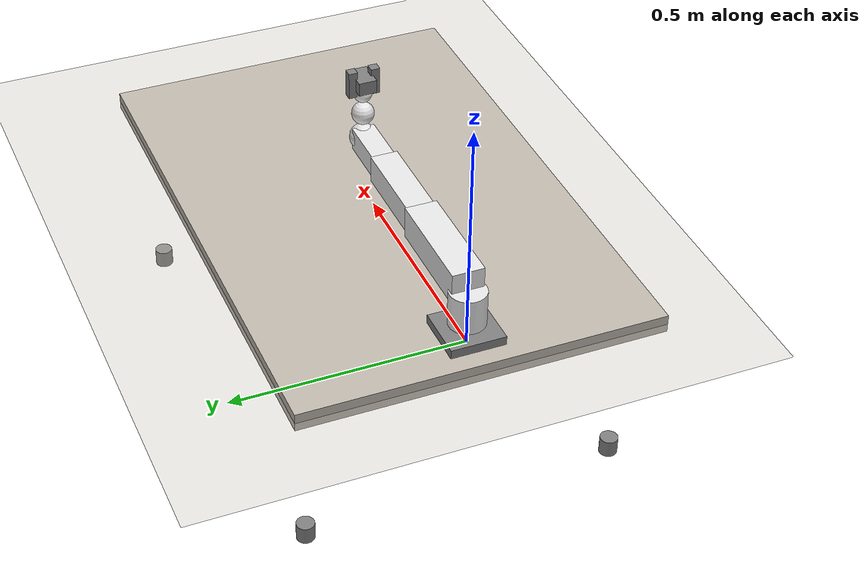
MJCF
<mujoco model="piper">
  <compiler angle="radian" meshdir="meshes" autolimits="true"/>

  <option timestep="0.002" gravity="0 0 -9.81"/>

  <default>
    <default class="piper">
      <joint damping="0.1" frictionloss="0.01" armature="0.01"/>
      <position kp="100" kv="10" forcerange="-50 50"/>
      <default class="visual">
        <geom type="mesh" contype="0" conaffinity="0" group="2"/>
      </default>
      <default class="collision">
        <geom type="mesh" group="3"/>
      </default>
    </default>
  </default>

  <asset>
    <texture name="table" type="2d" file="table.png" width="512" height="512"/>
    <material name="table" texture="table" specular="0.1" shininess="0.1"/>
    <material name="metal" rgba="0.5 0.5 0.5 1" specular="0.5" shininess="0.5"/>
    <material name="white" rgba="0.9 0.9 0.9 1"/>
    <material name="red" rgba="0.9 0.2 0.2 1"/>
    <material name="blue" rgba="0.2 0.2 0.9 1"/>
    <material name="green" rgba="0.2 0.9 0.2 1"/>
    <material name="ball_red" rgba="0.9 0.1 0.1 1" specular="0.3" shininess="0.8"/>
    <material name="ball_blue" rgba="0.1 0.1 0.9 1" specular="0.3" shininess="0.8"/>
    <material name="ball_green" rgba="0.1 0.9 0.1 1" specular="0.3" shininess="0.8"/>
  </asset>

  <worldbody>
    <light name="light1" pos="0 0 2" dir="0 0 -1"/>
    <light name="light2" pos="1 1 1.5" dir="-1 -1 -1.5"/>

    <geom name="floor" pos="0 0 0" size="2 2 0.1" type="plane" material="table" condim="3"/>

    <body name="table" pos="0.5 0 0">
      <geom name="table_top" pos="0 0 0" size="0.6 0.4 0.02" type="box" material="table" condim="3"/>
      <geom name="table_leg1" pos="-0.5 -0.35 -0.4" size="0.02 0.02 0.4" type="cylinder" material="metal"/>
      <geom name="table_leg2" pos="0.5 -0.35 -0.4" size="0.02 0.02 0.4" type="cylinder" material="metal"/>
      <geom name="table_leg3" pos="-0.5 0.35 -0.4" size="0.02 0.02 0.4" type="cylinder" material="metal"/>
      <geom name="table_leg4" pos="0.5 0.35 -0.4" size="0.02 0.02 0.4" type="cylinder" material="metal"/>
    </body>

    <body name="piper_base" pos="0 0 0">
      <geom name="base" pos="0 0 0.02" size="0.06 0.06 0.02" type="box" material="metal" condim="3"/>

      <body name="link1" pos="0 0 0.04">
        <joint name="joint1" pos="0 0 0" axis="0 0 1" range="-3.14 3.14" class="piper"/>
        <geom name="link1_visual" pos="0 0 0.05" size="0.04 0.04 0.05" type="cylinder" material="white" class="visual"/>
        <geom name="link1_collision" pos="0 0 0.05" size="0.04 0.04 0.05" type="cylinder" class="collision"/>

        <body name="link2" pos="0 0 0.1">
          <joint name="joint2" pos="0 0 0" axis="0 1 0" range="-1.57 1.57" class="piper"/>
          <geom name="link2_visual" pos="0.12 0 0" size="0.12 0.035 0.035" type="box" material="white" class="visual"/>
          <geom name="link2_collision" pos="0.12 0 0" size="0.12 0.035 0.035" type="box" class="collision"/>

          <body name="link3" pos="0.24 0 0">
            <joint name="joint3" pos="0 0 0" axis="0 1 0" range="-1.57 1.57" class="piper"/>
            <geom name="link3_visual" pos="0.1 0 0" size="0.1 0.03 0.03" type="box" material="white" class="visual"/>
            <geom name="link3_collision" pos="0.1 0 0" size="0.1 0.03 0.03" type="box" class="collision"/>

            <body name="link4" pos="0.2 0 0">
              <joint name="joint4" pos="0 0 0" axis="0 1 0" range="-1.57 1.57" class="piper"/>
              <geom name="link4_visual" pos="0.06 0 0" size="0.06 0.025 0.025" type="box" material="white" class="visual"/>
              <geom name="link4_collision" pos="0.06 0 0" size="0.06 0.025 0.025" type="box" class="collision"/>

              <body name="link5" pos="0.12 0 0">
                <joint name="joint5" pos="0 0 0" axis="0 0 1" range="-3.14 3.14" class="piper"/>
                <geom name="link5_visual" pos="0 0 0" size="0.03 0.03 0.03" type="sphere" material="white" class="visual"/>
                <geom name="link5_collision" pos="0 0 0" size="0.03 0.03 0.03" type="sphere" class="collision"/>

                <body name="link6" pos="0 0 0.06">
                  <joint name="joint6" pos="0 0 0" axis="0 1 0" range="-1.57 1.57" class="piper"/>
                  <geom name="link6_visual" pos="0 0 0" size="0.025 0.025 0.025" type="sphere" material="white" class="visual"/>
                  <geom name="link6_collision" pos="0 0 0" size="0.025 0.025 0.025" type="sphere" class="collision"/>

                  <body name="link7" pos="0 0 0.05">
                    <joint name="joint7" pos="0 0 0" axis="0 0 1" range="-3.14 3.14" class="piper"/>
                    <geom name="link7_visual" pos="0 0 0" size="0.02 0.02 0.02" type="sphere" material="white" class="visual"/>
                    <geom name="link7_collision" pos="0 0 0" size="0.02 0.02 0.02" type="sphere" class="collision"/>

                    <body name="gripper_base" pos="0 0 0.03">
                      <geom name="gripper_base_visual" pos="0 0 0" size="0.03 0.02 0.015" type="box" material="metal" class="visual"/>
                      <geom name="gripper_base_collision" pos="0 0 0" size="0.03 0.02 0.015" type="box" class="collision"/>

                      <body name="gripper_left" pos="0 0.015 0">
                        <joint name="gripper_left" pos="0 0 0" axis="0 1 0" range="0 0.04" class="piper"/>
                        <geom name="gripper_left_visual" pos="0 0.01 0" size="0.01 0.01 0.03" type="box" material="metal" class="visual"/>
                        <geom name="gripper_left_collision" pos="0 0.01 0" size="0.01 0.01 0.03" type="box" condim="3" friction="1 0.5 0.01" class="collision"/>
                      </body>

                      <body name="gripper_right" pos="0 -0.015 0">
                        <joint name="gripper_right" pos="0 0 0" axis="0 -1 0" range="0 0.04" class="piper"/>
                        <geom name="gripper_right_visual" pos="0 -0.01 0" size="0.01 0.01 0.03" type="box" material="metal" class="visual"/>
                        <geom name="gripper_right_collision" pos="0 -0.01 0" size="0.01 0.01 0.03" type="box" condim="3" friction="1 0.5 0.01" class="collision"/>
                      </body>
                    </body>
                  </body>
                </body>
              </body>
            </body>
          </body>
        </body>
      </body>
    </body>

    <camera name="camera" pos="0.8 0 0.8" quat="0.653 0.271 0.271 0.653" fovy="60"/>
    <camera name="top_view" pos="0 0 1.5" quat="1 0 0 0" fovy="60"/>
  </worldbody>

  <actuator>
    <position name="joint1_act" joint="joint1" kp="100" kv="10" forcerange="-50 50"/>
    <position name="joint2_act" joint="joint2" kp="100" kv="10" forcerange="-50 50"/>
    <position name="joint3_act" joint="joint3" kp="100" kv="10" forcerange="-50 50"/>
    <position name="joint4_act" joint="joint4" kp="100" kv="10" forcerange="-50 50"/>
    <position name="joint5_act" joint="joint5" kp="100" kv="10" forcerange="-50 50"/>
    <position name="joint6_act" joint="joint6" kp="100" kv="10" forcerange="-50 50"/>
    <position name="joint7_act" joint="joint7" kp="100" kv="10" forcerange="-50 50"/>
    <position name="gripper_left_act" joint="gripper_left" kp="50" kv="5" forcerange="-20 20"/>
    <position name="gripper_right_act" joint="gripper_right" kp="50" kv="5" forcerange="-20 20"/>
  </actuator>

  <sensor>
    <jointpos name="joint1_pos" joint="joint1"/>
    <jointpos name="joint2_pos" joint="joint2"/>
    <jointpos name="joint3_pos" joint="joint3"/>
    <jointpos name="joint4_pos" joint="joint4"/>
    <jointpos name="joint5_pos" joint="joint5"/>
    <jointpos name="joint6_pos" joint="joint6"/>
    <jointpos name="joint7_pos" joint="joint7"/>
    <jointvel name="joint1_vel" joint="joint1"/>
    <jointvel name="joint2_vel" joint="joint2"/>
    <jointvel name="joint3_vel" joint="joint3"/>
    <jointvel name="joint4_vel" joint="joint4"/>
    <jointvel name="joint5_vel" joint="joint5"/>
    <jointvel name="joint6_vel" joint="joint6"/>
    <jointvel name="joint7_vel" joint="joint7"/>
  </sensor>

  <keyframe>
    <key name="home" qpos="0 0 0 0 0 0 0 0 0" ctrl="0 0 0 0 0 0 0 0 0"/>
  </keyframe>
</mujoco>
